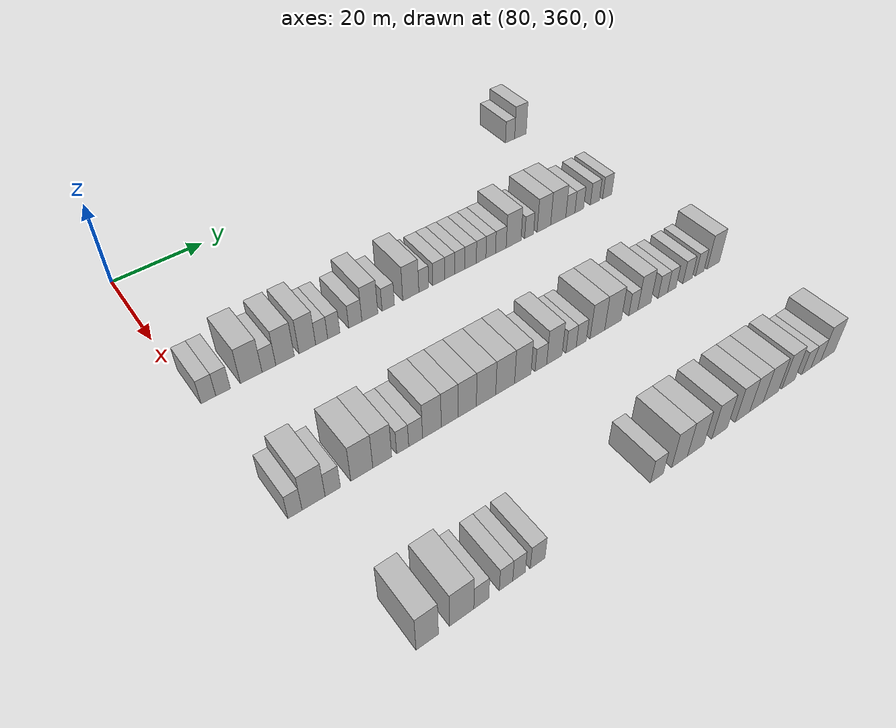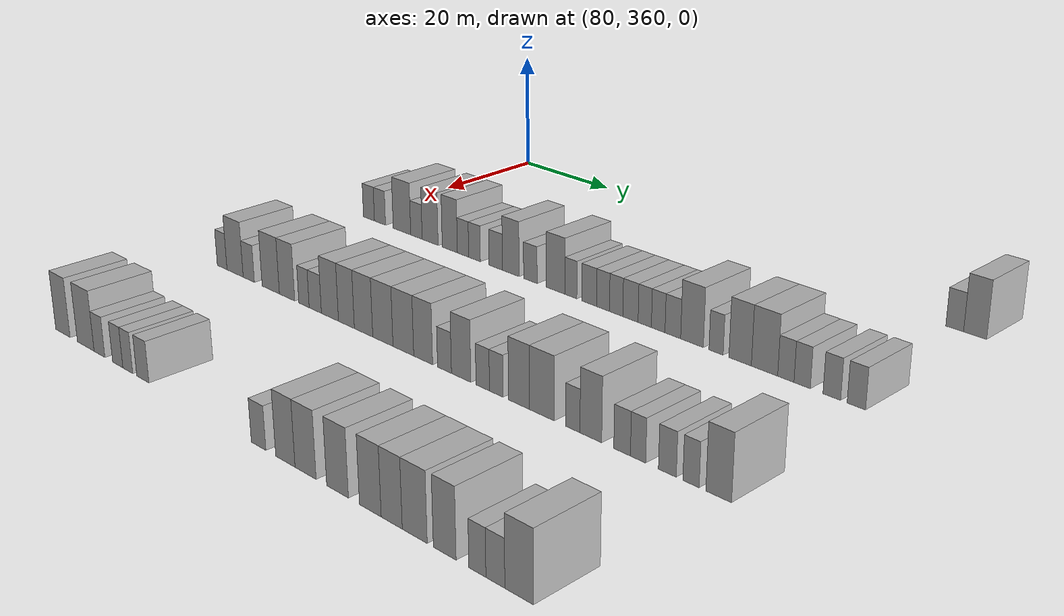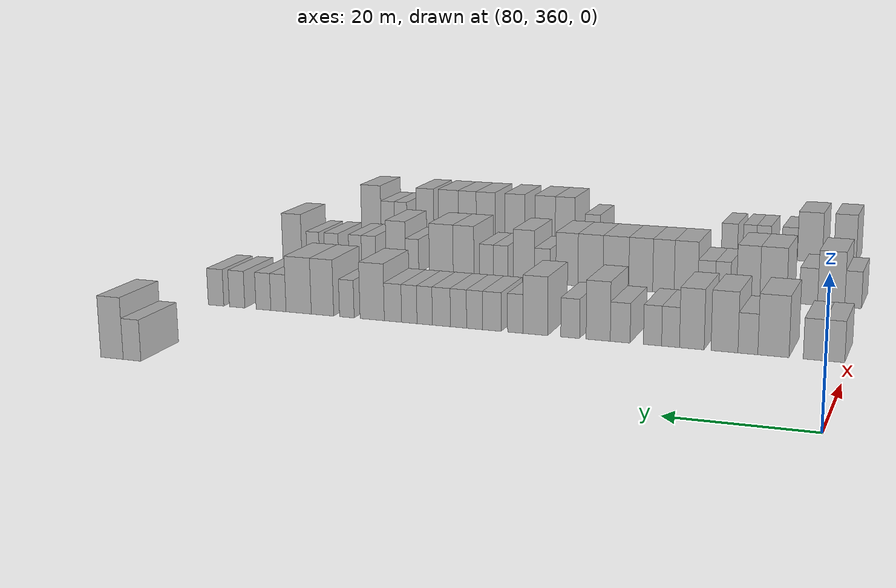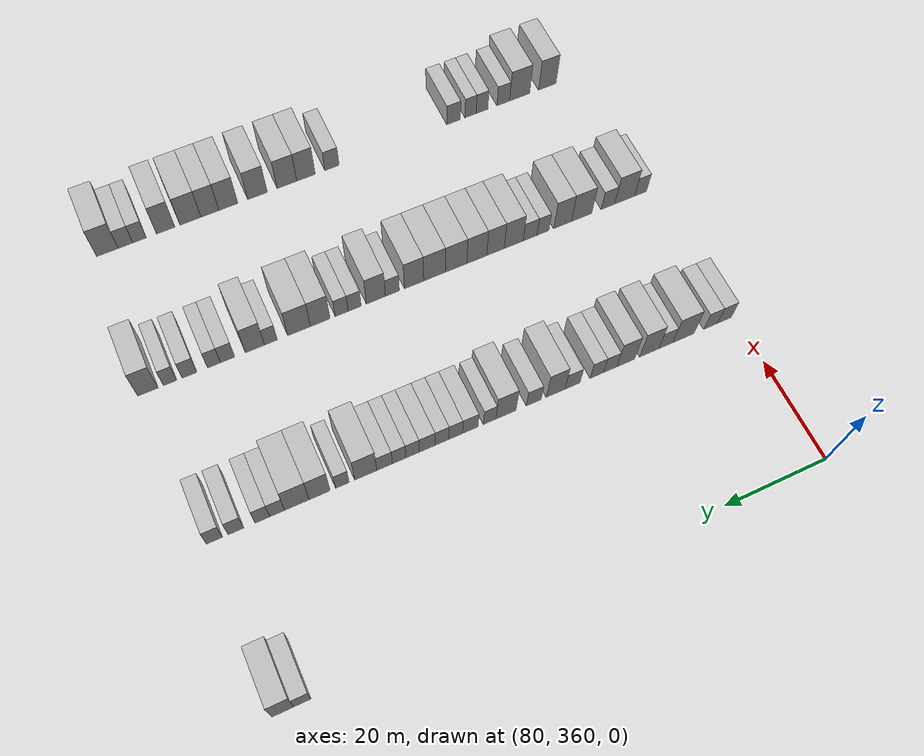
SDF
<sdf version="1.6">
 <world name="default">
  <model name="building_663">
   <static>1</static>
   <pose>85.0000 456.2371 0 0.000000 0.000000 0.000000</pose>
   <link name="link">
    <pose>0 0 3.00 0 0 0</pose>
    <collision name="collision"><geometry><box><size>10.0000 2.8579 6.0000</size></box></geometry></collision>
    <visual name="visual">
     <cast_shadows>0</cast_shadows>
     <geometry><box><size>10.0000 2.8579 6.0000</size></box></geometry>
     <material>
      <script>
       <uri>model://HANNAS_wall/materials/scripts</uri>
       <uri>model://HANNAS_wall/materials/textures</uri>
       <name>vrc/HANNAS_wall</name>
      </script>
     </material>
    </visual>
   </link>
  </model>
  <model name="building_664">
   <static>1</static>
   <pose>85.0000 459.4884 0 0.000000 0.000000 0.000000</pose>
   <link name="link">
    <pose>0 0 4.50 0 0 0</pose>
    <collision name="collision"><geometry><box><size>10.0000 3.6447 9.0000</size></box></geometry></collision>
    <visual name="visual">
     <cast_shadows>0</cast_shadows>
     <geometry><box><size>10.0000 3.6447 9.0000</size></box></geometry>
     <material>
      <script>
       <uri>model://HANNAS_wall/materials/scripts</uri>
       <uri>model://HANNAS_wall/materials/textures</uri>
       <name>vrc/HANNAS_wall</name>
      </script>
     </material>
    </visual>
   </link>
  </model>
  <model name="building_849">
   <static>1</static>
   <pose>115.0000 362.1940 0 0.000000 0.000000 0.000000</pose>
   <link name="link">
    <pose>0 0 3.00 0 0 0</pose>
    <collision name="collision"><geometry><box><size>10.0000 2.8998 6.0000</size></box></geometry></collision>
    <visual name="visual">
     <cast_shadows>0</cast_shadows>
     <geometry><box><size>10.0000 2.8998 6.0000</size></box></geometry>
     <material>
      <script>
       <uri>model://HANNAS_wall/materials/scripts</uri>
       <uri>model://HANNAS_wall/materials/textures</uri>
       <name>vrc/HANNAS_wall</name>
      </script>
     </material>
    </visual>
   </link>
  </model>
  <model name="building_850">
   <static>1</static>
   <pose>115.0000 365.0901 0 0.000000 0.000000 0.000000</pose>
   <link name="link">
    <pose>0 0 3.00 0 0 0</pose>
    <collision name="collision"><geometry><box><size>10.0000 2.8925 6.0000</size></box></geometry></collision>
    <visual name="visual">
     <cast_shadows>0</cast_shadows>
     <geometry><box><size>10.0000 2.8925 6.0000</size></box></geometry>
     <material>
      <script>
       <uri>model://HANNAS_wall/materials/scripts</uri>
       <uri>model://HANNAS_wall/materials/textures</uri>
       <name>vrc/HANNAS_wall</name>
      </script>
     </material>
    </visual>
   </link>
  </model>
  <model name="building_851">
   <static>1</static>
   <pose>115.0000 370.7527 0 0.000000 0.000000 0.000000</pose>
   <link name="link">
    <pose>0 0 4.50 0 0 0</pose>
    <collision name="collision"><geometry><box><size>10.0000 4.4326 9.0000</size></box></geometry></collision>
    <visual name="visual">
     <cast_shadows>0</cast_shadows>
     <geometry><box><size>10.0000 4.4326 9.0000</size></box></geometry>
     <material>
      <script>
       <uri>model://HANNAS_wall/materials/scripts</uri>
       <uri>model://HANNAS_wall/materials/textures</uri>
       <name>vrc/HANNAS_wall</name>
      </script>
     </material>
    </visual>
   </link>
  </model>
  <model name="building_852">
   <static>1</static>
   <pose>115.0000 374.3965 0 0.000000 0.000000 0.000000</pose>
   <link name="link">
    <pose>0 0 3.00 0 0 0</pose>
    <collision name="collision"><geometry><box><size>10.0000 2.8550 6.0000</size></box></geometry></collision>
    <visual name="visual">
     <cast_shadows>0</cast_shadows>
     <geometry><box><size>10.0000 2.8550 6.0000</size></box></geometry>
     <material>
      <script>
       <uri>model://HANNAS_wall/materials/scripts</uri>
       <uri>model://HANNAS_wall/materials/textures</uri>
       <name>vrc/HANNAS_wall</name>
      </script>
     </material>
    </visual>
   </link>
  </model>
  <model name="building_853">
   <static>1</static>
   <pose>115.0000 377.7786 0 0.000000 0.000000 0.000000</pose>
   <link name="link">
    <pose>0 0 4.50 0 0 0</pose>
    <collision name="collision"><geometry><box><size>10.0000 3.9092 9.0000</size></box></geometry></collision>
    <visual name="visual">
     <cast_shadows>0</cast_shadows>
     <geometry><box><size>10.0000 3.9092 9.0000</size></box></geometry>
     <material>
      <script>
       <uri>model://HANNAS_wall/materials/scripts</uri>
       <uri>model://HANNAS_wall/materials/textures</uri>
       <name>vrc/HANNAS_wall</name>
      </script>
     </material>
    </visual>
   </link>
  </model>
  <model name="building_854">
   <static>1</static>
   <pose>115.0000 382.5445 0 0.000000 0.000000 0.000000</pose>
   <link name="link">
    <pose>0 0 4.50 0 0 0</pose>
    <collision name="collision"><geometry><box><size>10.0000 3.6224 9.0000</size></box></geometry></collision>
    <visual name="visual">
     <cast_shadows>0</cast_shadows>
     <geometry><box><size>10.0000 3.6224 9.0000</size></box></geometry>
     <material>
      <script>
       <uri>model://HANNAS_wall/materials/scripts</uri>
       <uri>model://HANNAS_wall/materials/textures</uri>
       <name>vrc/HANNAS_wall</name>
      </script>
     </material>
    </visual>
   </link>
  </model>
  <model name="building_855">
   <static>1</static>
   <pose>115.0000 385.6779 0 0.000000 0.000000 0.000000</pose>
   <link name="link">
    <pose>0 0 3.00 0 0 0</pose>
    <collision name="collision"><geometry><box><size>10.0000 2.6444 6.0000</size></box></geometry></collision>
    <visual name="visual">
     <cast_shadows>0</cast_shadows>
     <geometry><box><size>10.0000 2.6444 6.0000</size></box></geometry>
     <material>
      <script>
       <uri>model://HANNAS_wall/materials/scripts</uri>
       <uri>model://HANNAS_wall/materials/textures</uri>
       <name>vrc/HANNAS_wall</name>
      </script>
     </material>
    </visual>
   </link>
  </model>
  <model name="building_856">
   <static>1</static>
   <pose>115.0000 388.3577 0 0.000000 0.000000 0.000000</pose>
   <link name="link">
    <pose>0 0 3.00 0 0 0</pose>
    <collision name="collision"><geometry><box><size>10.0000 2.7153 6.0000</size></box></geometry></collision>
    <visual name="visual">
     <cast_shadows>0</cast_shadows>
     <geometry><box><size>10.0000 2.7153 6.0000</size></box></geometry>
     <material>
      <script>
       <uri>model://HANNAS_wall/materials/scripts</uri>
       <uri>model://HANNAS_wall/materials/textures</uri>
       <name>vrc/HANNAS_wall</name>
      </script>
     </material>
    </visual>
   </link>
  </model>
  <model name="building_857">
   <static>1</static>
   <pose>115.0000 393.2143 0 0.000000 0.000000 0.000000</pose>
   <link name="link">
    <pose>0 0 3.00 0 0 0</pose>
    <collision name="collision"><geometry><box><size>10.0000 2.9977 6.0000</size></box></geometry></collision>
    <visual name="visual">
     <cast_shadows>0</cast_shadows>
     <geometry><box><size>10.0000 2.9977 6.0000</size></box></geometry>
     <material>
      <script>
       <uri>model://HANNAS_wall/materials/scripts</uri>
       <uri>model://HANNAS_wall/materials/textures</uri>
       <name>vrc/HANNAS_wall</name>
      </script>
     </material>
    </visual>
   </link>
  </model>
  <model name="building_858">
   <static>1</static>
   <pose>115.0000 396.5591 0 0.000000 0.000000 0.000000</pose>
   <link name="link">
    <pose>0 0 4.50 0 0 0</pose>
    <collision name="collision"><geometry><box><size>10.0000 3.6920 9.0000</size></box></geometry></collision>
    <visual name="visual">
     <cast_shadows>0</cast_shadows>
     <geometry><box><size>10.0000 3.6920 9.0000</size></box></geometry>
     <material>
      <script>
       <uri>model://HANNAS_wall/materials/scripts</uri>
       <uri>model://HANNAS_wall/materials/textures</uri>
       <name>vrc/HANNAS_wall</name>
      </script>
     </material>
    </visual>
   </link>
  </model>
  <model name="building_859">
   <static>1</static>
   <pose>115.0000 400.8617 0 0.000000 0.000000 0.000000</pose>
   <link name="link">
    <pose>0 0 3.00 0 0 0</pose>
    <collision name="collision"><geometry><box><size>10.0000 2.9131 6.0000</size></box></geometry></collision>
    <visual name="visual">
     <cast_shadows>0</cast_shadows>
     <geometry><box><size>10.0000 2.9131 6.0000</size></box></geometry>
     <material>
      <script>
       <uri>model://HANNAS_wall/materials/scripts</uri>
       <uri>model://HANNAS_wall/materials/textures</uri>
       <name>vrc/HANNAS_wall</name>
      </script>
     </material>
    </visual>
   </link>
  </model>
  <model name="building_860">
   <static>1</static>
   <pose>115.0000 406.2743 0 0.000000 0.000000 0.000000</pose>
   <link name="link">
    <pose>0 0 4.50 0 0 0</pose>
    <collision name="collision"><geometry><box><size>10.0000 3.9122 9.0000</size></box></geometry></collision>
    <visual name="visual">
     <cast_shadows>0</cast_shadows>
     <geometry><box><size>10.0000 3.9122 9.0000</size></box></geometry>
     <material>
      <script>
       <uri>model://HANNAS_wall/materials/scripts</uri>
       <uri>model://HANNAS_wall/materials/textures</uri>
       <name>vrc/HANNAS_wall</name>
      </script>
     </material>
    </visual>
   </link>
  </model>
  <model name="building_861">
   <static>1</static>
   <pose>115.0000 409.4470 0 0.000000 0.000000 0.000000</pose>
   <link name="link">
    <pose>0 0 3.00 0 0 0</pose>
    <collision name="collision"><geometry><box><size>10.0000 2.4332 6.0000</size></box></geometry></collision>
    <visual name="visual">
     <cast_shadows>0</cast_shadows>
     <geometry><box><size>10.0000 2.4332 6.0000</size></box></geometry>
     <material>
      <script>
       <uri>model://HANNAS_wall/materials/scripts</uri>
       <uri>model://HANNAS_wall/materials/textures</uri>
       <name>vrc/HANNAS_wall</name>
      </script>
     </material>
    </visual>
   </link>
  </model>
  <model name="building_862">
   <static>1</static>
   <pose>115.0000 413.1508 0 0.000000 0.000000 0.000000</pose>
   <link name="link">
    <pose>0 0 3.00 0 0 0</pose>
    <collision name="collision"><geometry><box><size>10.0000 2.9743 6.0000</size></box></geometry></collision>
    <visual name="visual">
     <cast_shadows>0</cast_shadows>
     <geometry><box><size>10.0000 2.9743 6.0000</size></box></geometry>
     <material>
      <script>
       <uri>model://HANNAS_wall/materials/scripts</uri>
       <uri>model://HANNAS_wall/materials/textures</uri>
       <name>vrc/HANNAS_wall</name>
      </script>
     </material>
    </visual>
   </link>
  </model>
  <model name="building_863">
   <static>1</static>
   <pose>115.0000 415.9290 0 0.000000 0.000000 0.000000</pose>
   <link name="link">
    <pose>0 0 3.00 0 0 0</pose>
    <collision name="collision"><geometry><box><size>10.0000 2.5821 6.0000</size></box></geometry></collision>
    <visual name="visual">
     <cast_shadows>0</cast_shadows>
     <geometry><box><size>10.0000 2.5821 6.0000</size></box></geometry>
     <material>
      <script>
       <uri>model://HANNAS_wall/materials/scripts</uri>
       <uri>model://HANNAS_wall/materials/textures</uri>
       <name>vrc/HANNAS_wall</name>
      </script>
     </material>
    </visual>
   </link>
  </model>
  <model name="building_864">
   <static>1</static>
   <pose>115.0000 418.5278 0 0.000000 0.000000 0.000000</pose>
   <link name="link">
    <pose>0 0 3.00 0 0 0</pose>
    <collision name="collision"><geometry><box><size>10.0000 2.6157 6.0000</size></box></geometry></collision>
    <visual name="visual">
     <cast_shadows>0</cast_shadows>
     <geometry><box><size>10.0000 2.6157 6.0000</size></box></geometry>
     <material>
      <script>
       <uri>model://HANNAS_wall/materials/scripts</uri>
       <uri>model://HANNAS_wall/materials/textures</uri>
       <name>vrc/HANNAS_wall</name>
      </script>
     </material>
    </visual>
   </link>
  </model>
  <model name="building_865">
   <static>1</static>
   <pose>115.0000 421.3132 0 0.000000 0.000000 0.000000</pose>
   <link name="link">
    <pose>0 0 3.00 0 0 0</pose>
    <collision name="collision"><geometry><box><size>10.0000 2.9550 6.0000</size></box></geometry></collision>
    <visual name="visual">
     <cast_shadows>0</cast_shadows>
     <geometry><box><size>10.0000 2.9550 6.0000</size></box></geometry>
     <material>
      <script>
       <uri>model://HANNAS_wall/materials/scripts</uri>
       <uri>model://HANNAS_wall/materials/textures</uri>
       <name>vrc/HANNAS_wall</name>
      </script>
     </material>
    </visual>
   </link>
  </model>
  <model name="building_866">
   <static>1</static>
   <pose>115.0000 424.0544 0 0.000000 0.000000 0.000000</pose>
   <link name="link">
    <pose>0 0 3.00 0 0 0</pose>
    <collision name="collision"><geometry><box><size>10.0000 2.5276 6.0000</size></box></geometry></collision>
    <visual name="visual">
     <cast_shadows>0</cast_shadows>
     <geometry><box><size>10.0000 2.5276 6.0000</size></box></geometry>
     <material>
      <script>
       <uri>model://HANNAS_wall/materials/scripts</uri>
       <uri>model://HANNAS_wall/materials/textures</uri>
       <name>vrc/HANNAS_wall</name>
      </script>
     </material>
    </visual>
   </link>
  </model>
  <model name="building_867">
   <static>1</static>
   <pose>115.0000 426.5894 0 0.000000 0.000000 0.000000</pose>
   <link name="link">
    <pose>0 0 3.00 0 0 0</pose>
    <collision name="collision"><geometry><box><size>10.0000 2.5424 6.0000</size></box></geometry></collision>
    <visual name="visual">
     <cast_shadows>0</cast_shadows>
     <geometry><box><size>10.0000 2.5424 6.0000</size></box></geometry>
     <material>
      <script>
       <uri>model://HANNAS_wall/materials/scripts</uri>
       <uri>model://HANNAS_wall/materials/textures</uri>
       <name>vrc/HANNAS_wall</name>
      </script>
     </material>
    </visual>
   </link>
  </model>
  <model name="building_868">
   <static>1</static>
   <pose>115.0000 429.3024 0 0.000000 0.000000 0.000000</pose>
   <link name="link">
    <pose>0 0 3.00 0 0 0</pose>
    <collision name="collision"><geometry><box><size>10.0000 2.8836 6.0000</size></box></geometry></collision>
    <visual name="visual">
     <cast_shadows>0</cast_shadows>
     <geometry><box><size>10.0000 2.8836 6.0000</size></box></geometry>
     <material>
      <script>
       <uri>model://HANNAS_wall/materials/scripts</uri>
       <uri>model://HANNAS_wall/materials/textures</uri>
       <name>vrc/HANNAS_wall</name>
      </script>
     </material>
    </visual>
   </link>
  </model>
  <model name="building_869">
   <static>1</static>
   <pose>115.0000 432.7891 0 0.000000 0.000000 0.000000</pose>
   <link name="link">
    <pose>0 0 4.50 0 0 0</pose>
    <collision name="collision"><geometry><box><size>10.0000 4.0897 9.0000</size></box></geometry></collision>
    <visual name="visual">
     <cast_shadows>0</cast_shadows>
     <geometry><box><size>10.0000 4.0897 9.0000</size></box></geometry>
     <material>
      <script>
       <uri>model://HANNAS_wall/materials/scripts</uri>
       <uri>model://HANNAS_wall/materials/textures</uri>
       <name>vrc/HANNAS_wall</name>
      </script>
     </material>
    </visual>
   </link>
  </model>
  <model name="building_870">
   <static>1</static>
   <pose>115.0000 437.0777 0 0.000000 0.000000 0.000000</pose>
   <link name="link">
    <pose>0 0 3.00 0 0 0</pose>
    <collision name="collision"><geometry><box><size>10.0000 2.4873 6.0000</size></box></geometry></collision>
    <visual name="visual">
     <cast_shadows>0</cast_shadows>
     <geometry><box><size>10.0000 2.4873 6.0000</size></box></geometry>
     <material>
      <script>
       <uri>model://HANNAS_wall/materials/scripts</uri>
       <uri>model://HANNAS_wall/materials/textures</uri>
       <name>vrc/HANNAS_wall</name>
      </script>
     </material>
    </visual>
   </link>
  </model>
  <model name="building_871">
   <static>1</static>
   <pose>115.0000 441.2434 0 0.000000 0.000000 0.000000</pose>
   <link name="link">
    <pose>0 0 4.50 0 0 0</pose>
    <collision name="collision"><geometry><box><size>10.0000 3.8441 9.0000</size></box></geometry></collision>
    <visual name="visual">
     <cast_shadows>0</cast_shadows>
     <geometry><box><size>10.0000 3.8441 9.0000</size></box></geometry>
     <material>
      <script>
       <uri>model://HANNAS_wall/materials/scripts</uri>
       <uri>model://HANNAS_wall/materials/textures</uri>
       <name>vrc/HANNAS_wall</name>
      </script>
     </material>
    </visual>
   </link>
  </model>
  <model name="building_872">
   <static>1</static>
   <pose>115.0000 445.3595 0 0.000000 0.000000 0.000000</pose>
   <link name="link">
    <pose>0 0 4.50 0 0 0</pose>
    <collision name="collision"><geometry><box><size>10.0000 4.3882 9.0000</size></box></geometry></collision>
    <visual name="visual">
     <cast_shadows>0</cast_shadows>
     <geometry><box><size>10.0000 4.3882 9.0000</size></box></geometry>
     <material>
      <script>
       <uri>model://HANNAS_wall/materials/scripts</uri>
       <uri>model://HANNAS_wall/materials/textures</uri>
       <name>vrc/HANNAS_wall</name>
      </script>
     </material>
    </visual>
   </link>
  </model>
  <model name="building_873">
   <static>1</static>
   <pose>115.0000 448.8848 0 0.000000 0.000000 0.000000</pose>
   <link name="link">
    <pose>0 0 3.00 0 0 0</pose>
    <collision name="collision"><geometry><box><size>10.0000 2.6623 6.0000</size></box></geometry></collision>
    <visual name="visual">
     <cast_shadows>0</cast_shadows>
     <geometry><box><size>10.0000 2.6623 6.0000</size></box></geometry>
     <material>
      <script>
       <uri>model://HANNAS_wall/materials/scripts</uri>
       <uri>model://HANNAS_wall/materials/textures</uri>
       <name>vrc/HANNAS_wall</name>
      </script>
     </material>
    </visual>
   </link>
  </model>
  <model name="building_874">
   <static>1</static>
   <pose>115.0000 451.5260 0 0.000000 0.000000 0.000000</pose>
   <link name="link">
    <pose>0 0 3.00 0 0 0</pose>
    <collision name="collision"><geometry><box><size>10.0000 2.6202 6.0000</size></box></geometry></collision>
    <visual name="visual">
     <cast_shadows>0</cast_shadows>
     <geometry><box><size>10.0000 2.6202 6.0000</size></box></geometry>
     <material>
      <script>
       <uri>model://HANNAS_wall/materials/scripts</uri>
       <uri>model://HANNAS_wall/materials/textures</uri>
       <name>vrc/HANNAS_wall</name>
      </script>
     </material>
    </visual>
   </link>
  </model>
  <model name="building_875">
   <static>1</static>
   <pose>115.0000 456.2098 0 0.000000 0.000000 0.000000</pose>
   <link name="link">
    <pose>0 0 3.00 0 0 0</pose>
    <collision name="collision"><geometry><box><size>10.0000 2.7473 6.0000</size></box></geometry></collision>
    <visual name="visual">
     <cast_shadows>0</cast_shadows>
     <geometry><box><size>10.0000 2.7473 6.0000</size></box></geometry>
     <material>
      <script>
       <uri>model://HANNAS_wall/materials/scripts</uri>
       <uri>model://HANNAS_wall/materials/textures</uri>
       <name>vrc/HANNAS_wall</name>
      </script>
     </material>
    </visual>
   </link>
  </model>
  <model name="building_876">
   <static>1</static>
   <pose>115.0000 459.9858 0 0.000000 0.000000 0.000000</pose>
   <link name="link">
    <pose>0 0 3.00 0 0 0</pose>
    <collision name="collision"><geometry><box><size>10.0000 2.8047 6.0000</size></box></geometry></collision>
    <visual name="visual">
     <cast_shadows>0</cast_shadows>
     <geometry><box><size>10.0000 2.8047 6.0000</size></box></geometry>
     <material>
      <script>
       <uri>model://HANNAS_wall/materials/scripts</uri>
       <uri>model://HANNAS_wall/materials/textures</uri>
       <name>vrc/HANNAS_wall</name>
      </script>
     </material>
    </visual>
   </link>
  </model>
  <model name="building_1076">
   <static>1</static>
   <pose>145.0000 362.8865 0 0.000000 0.000000 0.000000</pose>
   <link name="link">
    <pose>0 0 3.00 0 0 0</pose>
    <collision name="collision"><geometry><box><size>10.0000 2.6132 6.0000</size></box></geometry></collision>
    <visual name="visual">
     <cast_shadows>0</cast_shadows>
     <geometry><box><size>10.0000 2.6132 6.0000</size></box></geometry>
     <material>
      <script>
       <uri>model://HANNAS_wall/materials/scripts</uri>
       <uri>model://HANNAS_wall/materials/textures</uri>
       <name>vrc/HANNAS_wall</name>
      </script>
     </material>
    </visual>
   </link>
  </model>
  <model name="building_1077">
   <static>1</static>
   <pose>145.0000 366.3445 0 0.000000 0.000000 0.000000</pose>
   <link name="link">
    <pose>0 0 4.50 0 0 0</pose>
    <collision name="collision"><geometry><box><size>10.0000 4.3029 9.0000</size></box></geometry></collision>
    <visual name="visual">
     <cast_shadows>0</cast_shadows>
     <geometry><box><size>10.0000 4.3029 9.0000</size></box></geometry>
     <material>
      <script>
       <uri>model://HANNAS_wall/materials/scripts</uri>
       <uri>model://HANNAS_wall/materials/textures</uri>
       <name>vrc/HANNAS_wall</name>
      </script>
     </material>
    </visual>
   </link>
  </model>
  <model name="building_1078">
   <static>1</static>
   <pose>145.0000 369.9593 0 0.000000 0.000000 0.000000</pose>
   <link name="link">
    <pose>0 0 3.00 0 0 0</pose>
    <collision name="collision"><geometry><box><size>10.0000 2.9267 6.0000</size></box></geometry></collision>
    <visual name="visual">
     <cast_shadows>0</cast_shadows>
     <geometry><box><size>10.0000 2.9267 6.0000</size></box></geometry>
     <material>
      <script>
       <uri>model://HANNAS_wall/materials/scripts</uri>
       <uri>model://HANNAS_wall/materials/textures</uri>
       <name>vrc/HANNAS_wall</name>
      </script>
     </material>
    </visual>
   </link>
  </model>
  <model name="building_1079">
   <static>1</static>
   <pose>145.0000 375.5994 0 0.000000 0.000000 0.000000</pose>
   <link name="link">
    <pose>0 0 4.50 0 0 0</pose>
    <collision name="collision"><geometry><box><size>10.0000 4.3534 9.0000</size></box></geometry></collision>
    <visual name="visual">
     <cast_shadows>0</cast_shadows>
     <geometry><box><size>10.0000 4.3534 9.0000</size></box></geometry>
     <material>
      <script>
       <uri>model://HANNAS_wall/materials/scripts</uri>
       <uri>model://HANNAS_wall/materials/textures</uri>
       <name>vrc/HANNAS_wall</name>
      </script>
     </material>
    </visual>
   </link>
  </model>
  <model name="building_1080">
   <static>1</static>
   <pose>145.0000 379.6741 0 0.000000 0.000000 0.000000</pose>
   <link name="link">
    <pose>0 0 4.50 0 0 0</pose>
    <collision name="collision"><geometry><box><size>10.0000 3.7960 9.0000</size></box></geometry></collision>
    <visual name="visual">
     <cast_shadows>0</cast_shadows>
     <geometry><box><size>10.0000 3.7960 9.0000</size></box></geometry>
     <material>
      <script>
       <uri>model://HANNAS_wall/materials/scripts</uri>
       <uri>model://HANNAS_wall/materials/textures</uri>
       <name>vrc/HANNAS_wall</name>
      </script>
     </material>
    </visual>
   </link>
  </model>
  <model name="building_1081">
   <static>1</static>
   <pose>145.0000 383.8187 0 0.000000 0.000000 0.000000</pose>
   <link name="link">
    <pose>0 0 3.00 0 0 0</pose>
    <collision name="collision"><geometry><box><size>10.0000 2.4933 6.0000</size></box></geometry></collision>
    <visual name="visual">
     <cast_shadows>0</cast_shadows>
     <geometry><box><size>10.0000 2.4933 6.0000</size></box></geometry>
     <material>
      <script>
       <uri>model://HANNAS_wall/materials/scripts</uri>
       <uri>model://HANNAS_wall/materials/textures</uri>
       <name>vrc/HANNAS_wall</name>
      </script>
     </material>
    </visual>
   </link>
  </model>
  <model name="building_1082">
   <static>1</static>
   <pose>145.0000 386.5149 0 0.000000 0.000000 0.000000</pose>
   <link name="link">
    <pose>0 0 3.00 0 0 0</pose>
    <collision name="collision"><geometry><box><size>10.0000 2.8990 6.0000</size></box></geometry></collision>
    <visual name="visual">
     <cast_shadows>0</cast_shadows>
     <geometry><box><size>10.0000 2.8990 6.0000</size></box></geometry>
     <material>
      <script>
       <uri>model://HANNAS_wall/materials/scripts</uri>
       <uri>model://HANNAS_wall/materials/textures</uri>
       <name>vrc/HANNAS_wall</name>
      </script>
     </material>
    </visual>
   </link>
  </model>
  <model name="building_1083">
   <static>1</static>
   <pose>145.0000 389.9543 0 0.000000 0.000000 0.000000</pose>
   <link name="link">
    <pose>0 0 4.50 0 0 0</pose>
    <collision name="collision"><geometry><box><size>10.0000 3.9797 9.0000</size></box></geometry></collision>
    <visual name="visual">
     <cast_shadows>0</cast_shadows>
     <geometry><box><size>10.0000 3.9797 9.0000</size></box></geometry>
     <material>
      <script>
       <uri>model://HANNAS_wall/materials/scripts</uri>
       <uri>model://HANNAS_wall/materials/textures</uri>
       <name>vrc/HANNAS_wall</name>
      </script>
     </material>
    </visual>
   </link>
  </model>
  <model name="building_1084">
   <static>1</static>
   <pose>145.0000 393.7561 0 0.000000 0.000000 0.000000</pose>
   <link name="link">
    <pose>0 0 4.50 0 0 0</pose>
    <collision name="collision"><geometry><box><size>10.0000 3.6240 9.0000</size></box></geometry></collision>
    <visual name="visual">
     <cast_shadows>0</cast_shadows>
     <geometry><box><size>10.0000 3.6240 9.0000</size></box></geometry>
     <material>
      <script>
       <uri>model://HANNAS_wall/materials/scripts</uri>
       <uri>model://HANNAS_wall/materials/textures</uri>
       <name>vrc/HANNAS_wall</name>
      </script>
     </material>
    </visual>
   </link>
  </model>
  <model name="building_1085">
   <static>1</static>
   <pose>145.0000 397.6137 0 0.000000 0.000000 0.000000</pose>
   <link name="link">
    <pose>0 0 4.50 0 0 0</pose>
    <collision name="collision"><geometry><box><size>10.0000 4.0911 9.0000</size></box></geometry></collision>
    <visual name="visual">
     <cast_shadows>0</cast_shadows>
     <geometry><box><size>10.0000 4.0911 9.0000</size></box></geometry>
     <material>
      <script>
       <uri>model://HANNAS_wall/materials/scripts</uri>
       <uri>model://HANNAS_wall/materials/textures</uri>
       <name>vrc/HANNAS_wall</name>
      </script>
     </material>
    </visual>
   </link>
  </model>
  <model name="building_1086">
   <static>1</static>
   <pose>145.0000 401.8581 0 0.000000 0.000000 0.000000</pose>
   <link name="link">
    <pose>0 0 4.50 0 0 0</pose>
    <collision name="collision"><geometry><box><size>10.0000 4.3978 9.0000</size></box></geometry></collision>
    <visual name="visual">
     <cast_shadows>0</cast_shadows>
     <geometry><box><size>10.0000 4.3978 9.0000</size></box></geometry>
     <material>
      <script>
       <uri>model://HANNAS_wall/materials/scripts</uri>
       <uri>model://HANNAS_wall/materials/textures</uri>
       <name>vrc/HANNAS_wall</name>
      </script>
     </material>
    </visual>
   </link>
  </model>
  <model name="building_1087">
   <static>1</static>
   <pose>145.0000 406.2484 0 0.000000 0.000000 0.000000</pose>
   <link name="link">
    <pose>0 0 4.50 0 0 0</pose>
    <collision name="collision"><geometry><box><size>10.0000 4.3827 9.0000</size></box></geometry></collision>
    <visual name="visual">
     <cast_shadows>0</cast_shadows>
     <geometry><box><size>10.0000 4.3827 9.0000</size></box></geometry>
     <material>
      <script>
       <uri>model://HANNAS_wall/materials/scripts</uri>
       <uri>model://HANNAS_wall/materials/textures</uri>
       <name>vrc/HANNAS_wall</name>
      </script>
     </material>
    </visual>
   </link>
  </model>
  <model name="building_1088">
   <static>1</static>
   <pose>145.0000 410.3868 0 0.000000 0.000000 0.000000</pose>
   <link name="link">
    <pose>0 0 4.50 0 0 0</pose>
    <collision name="collision"><geometry><box><size>10.0000 3.8942 9.0000</size></box></geometry></collision>
    <visual name="visual">
     <cast_shadows>0</cast_shadows>
     <geometry><box><size>10.0000 3.8942 9.0000</size></box></geometry>
     <material>
      <script>
       <uri>model://HANNAS_wall/materials/scripts</uri>
       <uri>model://HANNAS_wall/materials/textures</uri>
       <name>vrc/HANNAS_wall</name>
      </script>
     </material>
    </visual>
   </link>
  </model>
  <model name="building_1089">
   <static>1</static>
   <pose>145.0000 414.7266 0 0.000000 0.000000 0.000000</pose>
   <link name="link">
    <pose>0 0 3.00 0 0 0</pose>
    <collision name="collision"><geometry><box><size>10.0000 2.7854 6.0000</size></box></geometry></collision>
    <visual name="visual">
     <cast_shadows>0</cast_shadows>
     <geometry><box><size>10.0000 2.7854 6.0000</size></box></geometry>
     <material>
      <script>
       <uri>model://HANNAS_wall/materials/scripts</uri>
       <uri>model://HANNAS_wall/materials/textures</uri>
       <name>vrc/HANNAS_wall</name>
      </script>
     </material>
    </visual>
   </link>
  </model>
  <model name="building_1090">
   <static>1</static>
   <pose>145.0000 418.0223 0 0.000000 0.000000 0.000000</pose>
   <link name="link">
    <pose>0 0 4.50 0 0 0</pose>
    <collision name="collision"><geometry><box><size>10.0000 3.8061 9.0000</size></box></geometry></collision>
    <visual name="visual">
     <cast_shadows>0</cast_shadows>
     <geometry><box><size>10.0000 3.8061 9.0000</size></box></geometry>
     <material>
      <script>
       <uri>model://HANNAS_wall/materials/scripts</uri>
       <uri>model://HANNAS_wall/materials/textures</uri>
       <name>vrc/HANNAS_wall</name>
      </script>
     </material>
    </visual>
   </link>
  </model>
  <model name="building_1091">
   <static>1</static>
   <pose>145.0000 422.2118 0 0.000000 0.000000 0.000000</pose>
   <link name="link">
    <pose>0 0 3.00 0 0 0</pose>
    <collision name="collision"><geometry><box><size>10.0000 2.5728 6.0000</size></box></geometry></collision>
    <visual name="visual">
     <cast_shadows>0</cast_shadows>
     <geometry><box><size>10.0000 2.5728 6.0000</size></box></geometry>
     <material>
      <script>
       <uri>model://HANNAS_wall/materials/scripts</uri>
       <uri>model://HANNAS_wall/materials/textures</uri>
       <name>vrc/HANNAS_wall</name>
      </script>
     </material>
    </visual>
   </link>
  </model>
  <model name="building_1092">
   <static>1</static>
   <pose>145.0000 424.7785 0 0.000000 0.000000 0.000000</pose>
   <link name="link">
    <pose>0 0 3.00 0 0 0</pose>
    <collision name="collision"><geometry><box><size>10.0000 2.5607 6.0000</size></box></geometry></collision>
    <visual name="visual">
     <cast_shadows>0</cast_shadows>
     <geometry><box><size>10.0000 2.5607 6.0000</size></box></geometry>
     <material>
      <script>
       <uri>model://HANNAS_wall/materials/scripts</uri>
       <uri>model://HANNAS_wall/materials/textures</uri>
       <name>vrc/HANNAS_wall</name>
      </script>
     </material>
    </visual>
   </link>
  </model>
  <model name="building_1093">
   <static>1</static>
   <pose>145.0000 428.9701 0 0.000000 0.000000 0.000000</pose>
   <link name="link">
    <pose>0 0 4.50 0 0 0</pose>
    <collision name="collision"><geometry><box><size>10.0000 3.8223 9.0000</size></box></geometry></collision>
    <visual name="visual">
     <cast_shadows>0</cast_shadows>
     <geometry><box><size>10.0000 3.8223 9.0000</size></box></geometry>
     <material>
      <script>
       <uri>model://HANNAS_wall/materials/scripts</uri>
       <uri>model://HANNAS_wall/materials/textures</uri>
       <name>vrc/HANNAS_wall</name>
      </script>
     </material>
    </visual>
   </link>
  </model>
  <model name="building_1094">
   <static>1</static>
   <pose>145.0000 433.0875 0 0.000000 0.000000 0.000000</pose>
   <link name="link">
    <pose>0 0 4.50 0 0 0</pose>
    <collision name="collision"><geometry><box><size>10.0000 4.4126 9.0000</size></box></geometry></collision>
    <visual name="visual">
     <cast_shadows>0</cast_shadows>
     <geometry><box><size>10.0000 4.4126 9.0000</size></box></geometry>
     <material>
      <script>
       <uri>model://HANNAS_wall/materials/scripts</uri>
       <uri>model://HANNAS_wall/materials/textures</uri>
       <name>vrc/HANNAS_wall</name>
      </script>
     </material>
    </visual>
   </link>
  </model>
  <model name="building_1095">
   <static>1</static>
   <pose>145.0000 438.5245 0 0.000000 0.000000 0.000000</pose>
   <link name="link">
    <pose>0 0 3.00 0 0 0</pose>
    <collision name="collision"><geometry><box><size>10.0000 2.4612 6.0000</size></box></geometry></collision>
    <visual name="visual">
     <cast_shadows>0</cast_shadows>
     <geometry><box><size>10.0000 2.4612 6.0000</size></box></geometry>
     <material>
      <script>
       <uri>model://HANNAS_wall/materials/scripts</uri>
       <uri>model://HANNAS_wall/materials/textures</uri>
       <name>vrc/HANNAS_wall</name>
      </script>
     </material>
    </visual>
   </link>
  </model>
  <model name="building_1096">
   <static>1</static>
   <pose>145.0000 441.5829 0 0.000000 0.000000 0.000000</pose>
   <link name="link">
    <pose>0 0 4.50 0 0 0</pose>
    <collision name="collision"><geometry><box><size>10.0000 3.6557 9.0000</size></box></geometry></collision>
    <visual name="visual">
     <cast_shadows>0</cast_shadows>
     <geometry><box><size>10.0000 3.6557 9.0000</size></box></geometry>
     <material>
      <script>
       <uri>model://HANNAS_wall/materials/scripts</uri>
       <uri>model://HANNAS_wall/materials/textures</uri>
       <name>vrc/HANNAS_wall</name>
      </script>
     </material>
    </visual>
   </link>
  </model>
  <model name="building_1097">
   <static>1</static>
   <pose>145.0000 446.7610 0 0.000000 0.000000 0.000000</pose>
   <link name="link">
    <pose>0 0 3.00 0 0 0</pose>
    <collision name="collision"><geometry><box><size>10.0000 2.7006 6.0000</size></box></geometry></collision>
    <visual name="visual">
     <cast_shadows>0</cast_shadows>
     <geometry><box><size>10.0000 2.7006 6.0000</size></box></geometry>
     <material>
      <script>
       <uri>model://HANNAS_wall/materials/scripts</uri>
       <uri>model://HANNAS_wall/materials/textures</uri>
       <name>vrc/HANNAS_wall</name>
      </script>
     </material>
    </visual>
   </link>
  </model>
  <model name="building_1098">
   <static>1</static>
   <pose>145.0000 449.3284 0 0.000000 0.000000 0.000000</pose>
   <link name="link">
    <pose>0 0 3.00 0 0 0</pose>
    <collision name="collision"><geometry><box><size>10.0000 2.4341 6.0000</size></box></geometry></collision>
    <visual name="visual">
     <cast_shadows>0</cast_shadows>
     <geometry><box><size>10.0000 2.4341 6.0000</size></box></geometry>
     <material>
      <script>
       <uri>model://HANNAS_wall/materials/scripts</uri>
       <uri>model://HANNAS_wall/materials/textures</uri>
       <name>vrc/HANNAS_wall</name>
      </script>
     </material>
    </visual>
   </link>
  </model>
  <model name="building_1099">
   <static>1</static>
   <pose>145.0000 453.9229 0 0.000000 0.000000 0.000000</pose>
   <link name="link">
    <pose>0 0 3.00 0 0 0</pose>
    <collision name="collision"><geometry><box><size>10.0000 2.7551 6.0000</size></box></geometry></collision>
    <visual name="visual">
     <cast_shadows>0</cast_shadows>
     <geometry><box><size>10.0000 2.7551 6.0000</size></box></geometry>
     <material>
      <script>
       <uri>model://HANNAS_wall/materials/scripts</uri>
       <uri>model://HANNAS_wall/materials/textures</uri>
       <name>vrc/HANNAS_wall</name>
      </script>
     </material>
    </visual>
   </link>
  </model>
  <model name="building_1100">
   <static>1</static>
   <pose>145.0000 457.5243 0 0.000000 0.000000 0.000000</pose>
   <link name="link">
    <pose>0 0 3.00 0 0 0</pose>
    <collision name="collision"><geometry><box><size>10.0000 2.4477 6.0000</size></box></geometry></collision>
    <visual name="visual">
     <cast_shadows>0</cast_shadows>
     <geometry><box><size>10.0000 2.4477 6.0000</size></box></geometry>
     <material>
      <script>
       <uri>model://HANNAS_wall/materials/scripts</uri>
       <uri>model://HANNAS_wall/materials/textures</uri>
       <name>vrc/HANNAS_wall</name>
      </script>
     </material>
    </visual>
   </link>
  </model>
  <model name="building_1101">
   <static>1</static>
   <pose>145.0000 461.6244 0 0.000000 0.000000 0.000000</pose>
   <link name="link">
    <pose>0 0 4.50 0 0 0</pose>
    <collision name="collision"><geometry><box><size>10.0000 3.7525 9.0000</size></box></geometry></collision>
    <visual name="visual">
     <cast_shadows>0</cast_shadows>
     <geometry><box><size>10.0000 3.7525 9.0000</size></box></geometry>
     <material>
      <script>
       <uri>model://HANNAS_wall/materials/scripts</uri>
       <uri>model://HANNAS_wall/materials/textures</uri>
       <name>vrc/HANNAS_wall</name>
      </script>
     </material>
    </visual>
   </link>
  </model>
  <model name="building_1303">
   <static>1</static>
   <pose>175.0000 367.6150 0 0.000000 0.000000 0.000000</pose>
   <link name="link">
    <pose>0 0 4.50 0 0 0</pose>
    <collision name="collision"><geometry><box><size>10.0000 3.9549 9.0000</size></box></geometry></collision>
    <visual name="visual">
     <cast_shadows>0</cast_shadows>
     <geometry><box><size>10.0000 3.9549 9.0000</size></box></geometry>
     <material>
      <script>
       <uri>model://HANNAS_wall/materials/scripts</uri>
       <uri>model://HANNAS_wall/materials/textures</uri>
       <name>vrc/HANNAS_wall</name>
      </script>
     </material>
    </visual>
   </link>
  </model>
  <model name="building_1304">
   <static>1</static>
   <pose>175.0000 373.8257 0 0.000000 0.000000 0.000000</pose>
   <link name="link">
    <pose>0 0 4.50 0 0 0</pose>
    <collision name="collision"><geometry><box><size>10.0000 4.4667 9.0000</size></box></geometry></collision>
    <visual name="visual">
     <cast_shadows>0</cast_shadows>
     <geometry><box><size>10.0000 4.4667 9.0000</size></box></geometry>
     <material>
      <script>
       <uri>model://HANNAS_wall/materials/scripts</uri>
       <uri>model://HANNAS_wall/materials/textures</uri>
       <name>vrc/HANNAS_wall</name>
      </script>
     </material>
    </visual>
   </link>
  </model>
  <model name="building_1305">
   <static>1</static>
   <pose>175.0000 377.4683 0 0.000000 0.000000 0.000000</pose>
   <link name="link">
    <pose>0 0 3.00 0 0 0</pose>
    <collision name="collision"><geometry><box><size>10.0000 2.8184 6.0000</size></box></geometry></collision>
    <visual name="visual">
     <cast_shadows>0</cast_shadows>
     <geometry><box><size>10.0000 2.8184 6.0000</size></box></geometry>
     <material>
      <script>
       <uri>model://HANNAS_wall/materials/scripts</uri>
       <uri>model://HANNAS_wall/materials/textures</uri>
       <name>vrc/HANNAS_wall</name>
      </script>
     </material>
    </visual>
   </link>
  </model>
  <model name="building_1306">
   <static>1</static>
   <pose>175.0000 382.1740 0 0.000000 0.000000 0.000000</pose>
   <link name="link">
    <pose>0 0 3.00 0 0 0</pose>
    <collision name="collision"><geometry><box><size>10.0000 2.5931 6.0000</size></box></geometry></collision>
    <visual name="visual">
     <cast_shadows>0</cast_shadows>
     <geometry><box><size>10.0000 2.5931 6.0000</size></box></geometry>
     <material>
      <script>
       <uri>model://HANNAS_wall/materials/scripts</uri>
       <uri>model://HANNAS_wall/materials/textures</uri>
       <name>vrc/HANNAS_wall</name>
      </script>
     </material>
    </visual>
   </link>
  </model>
  <model name="building_1307">
   <static>1</static>
   <pose>175.0000 384.7054 0 0.000000 0.000000 0.000000</pose>
   <link name="link">
    <pose>0 0 3.00 0 0 0</pose>
    <collision name="collision"><geometry><box><size>10.0000 2.4697 6.0000</size></box></geometry></collision>
    <visual name="visual">
     <cast_shadows>0</cast_shadows>
     <geometry><box><size>10.0000 2.4697 6.0000</size></box></geometry>
     <material>
      <script>
       <uri>model://HANNAS_wall/materials/scripts</uri>
       <uri>model://HANNAS_wall/materials/textures</uri>
       <name>vrc/HANNAS_wall</name>
      </script>
     </material>
    </visual>
   </link>
  </model>
  <model name="building_1308">
   <static>1</static>
   <pose>175.0000 388.4227 0 0.000000 0.000000 0.000000</pose>
   <link name="link">
    <pose>0 0 3.00 0 0 0</pose>
    <collision name="collision"><geometry><box><size>10.0000 2.9649 6.0000</size></box></geometry></collision>
    <visual name="visual">
     <cast_shadows>0</cast_shadows>
     <geometry><box><size>10.0000 2.9649 6.0000</size></box></geometry>
     <material>
      <script>
       <uri>model://HANNAS_wall/materials/scripts</uri>
       <uri>model://HANNAS_wall/materials/textures</uri>
       <name>vrc/HANNAS_wall</name>
      </script>
     </material>
    </visual>
   </link>
  </model>
  <model name="building_1309">
   <static>1</static>
   <pose>175.0000 414.3915 0 0.000000 0.000000 0.000000</pose>
   <link name="link">
    <pose>0 0 3.00 0 0 0</pose>
    <collision name="collision"><geometry><box><size>10.0000 2.9909 6.0000</size></box></geometry></collision>
    <visual name="visual">
     <cast_shadows>0</cast_shadows>
     <geometry><box><size>10.0000 2.9909 6.0000</size></box></geometry>
     <material>
      <script>
       <uri>model://HANNAS_wall/materials/scripts</uri>
       <uri>model://HANNAS_wall/materials/textures</uri>
       <name>vrc/HANNAS_wall</name>
      </script>
     </material>
    </visual>
   </link>
  </model>
  <model name="building_1310">
   <static>1</static>
   <pose>175.0000 419.7987 0 0.000000 0.000000 0.000000</pose>
   <link name="link">
    <pose>0 0 4.50 0 0 0</pose>
    <collision name="collision"><geometry><box><size>10.0000 3.8235 9.0000</size></box></geometry></collision>
    <visual name="visual">
     <cast_shadows>0</cast_shadows>
     <geometry><box><size>10.0000 3.8235 9.0000</size></box></geometry>
     <material>
      <script>
       <uri>model://HANNAS_wall/materials/scripts</uri>
       <uri>model://HANNAS_wall/materials/textures</uri>
       <name>vrc/HANNAS_wall</name>
      </script>
     </material>
    </visual>
   </link>
  </model>
  <model name="building_1311">
   <static>1</static>
   <pose>175.0000 423.7388 0 0.000000 0.000000 0.000000</pose>
   <link name="link">
    <pose>0 0 4.50 0 0 0</pose>
    <collision name="collision"><geometry><box><size>10.0000 4.0567 9.0000</size></box></geometry></collision>
    <visual name="visual">
     <cast_shadows>0</cast_shadows>
     <geometry><box><size>10.0000 4.0567 9.0000</size></box></geometry>
     <material>
      <script>
       <uri>model://HANNAS_wall/materials/scripts</uri>
       <uri>model://HANNAS_wall/materials/textures</uri>
       <name>vrc/HANNAS_wall</name>
      </script>
     </material>
    </visual>
   </link>
  </model>
  <model name="building_1312">
   <static>1</static>
   <pose>175.0000 429.7692 0 0.000000 0.000000 0.000000</pose>
   <link name="link">
    <pose>0 0 4.50 0 0 0</pose>
    <collision name="collision"><geometry><box><size>10.0000 4.0041 9.0000</size></box></geometry></collision>
    <visual name="visual">
     <cast_shadows>0</cast_shadows>
     <geometry><box><size>10.0000 4.0041 9.0000</size></box></geometry>
     <material>
      <script>
       <uri>model://HANNAS_wall/materials/scripts</uri>
       <uri>model://HANNAS_wall/materials/textures</uri>
       <name>vrc/HANNAS_wall</name>
      </script>
     </material>
    </visual>
   </link>
  </model>
  <model name="building_1313">
   <static>1</static>
   <pose>175.0000 435.6869 0 0.000000 0.000000 0.000000</pose>
   <link name="link">
    <pose>0 0 4.50 0 0 0</pose>
    <collision name="collision"><geometry><box><size>10.0000 3.8312 9.0000</size></box></geometry></collision>
    <visual name="visual">
     <cast_shadows>0</cast_shadows>
     <geometry><box><size>10.0000 3.8312 9.0000</size></box></geometry>
     <material>
      <script>
       <uri>model://HANNAS_wall/materials/scripts</uri>
       <uri>model://HANNAS_wall/materials/textures</uri>
       <name>vrc/HANNAS_wall</name>
      </script>
     </material>
    </visual>
   </link>
  </model>
  <model name="building_1314">
   <static>1</static>
   <pose>175.0000 439.4133 0 0.000000 0.000000 0.000000</pose>
   <link name="link">
    <pose>0 0 4.50 0 0 0</pose>
    <collision name="collision"><geometry><box><size>10.0000 3.6216 9.0000</size></box></geometry></collision>
    <visual name="visual">
     <cast_shadows>0</cast_shadows>
     <geometry><box><size>10.0000 3.6216 9.0000</size></box></geometry>
     <material>
      <script>
       <uri>model://HANNAS_wall/materials/scripts</uri>
       <uri>model://HANNAS_wall/materials/textures</uri>
       <name>vrc/HANNAS_wall</name>
      </script>
     </material>
    </visual>
   </link>
  </model>
  <model name="building_1315">
   <static>1</static>
   <pose>175.0000 443.3038 0 0.000000 0.000000 0.000000</pose>
   <link name="link">
    <pose>0 0 4.50 0 0 0</pose>
    <collision name="collision"><geometry><box><size>10.0000 4.1595 9.0000</size></box></geometry></collision>
    <visual name="visual">
     <cast_shadows>0</cast_shadows>
     <geometry><box><size>10.0000 4.1595 9.0000</size></box></geometry>
     <material>
      <script>
       <uri>model://HANNAS_wall/materials/scripts</uri>
       <uri>model://HANNAS_wall/materials/textures</uri>
       <name>vrc/HANNAS_wall</name>
      </script>
     </material>
    </visual>
   </link>
  </model>
  <model name="building_1316">
   <static>1</static>
   <pose>175.0000 448.2112 0 0.000000 0.000000 0.000000</pose>
   <link name="link">
    <pose>0 0 4.50 0 0 0</pose>
    <collision name="collision"><geometry><box><size>10.0000 3.6552 9.0000</size></box></geometry></collision>
    <visual name="visual">
     <cast_shadows>0</cast_shadows>
     <geometry><box><size>10.0000 3.6552 9.0000</size></box></geometry>
     <material>
      <script>
       <uri>model://HANNAS_wall/materials/scripts</uri>
       <uri>model://HANNAS_wall/materials/textures</uri>
       <name>vrc/HANNAS_wall</name>
      </script>
     </material>
    </visual>
   </link>
  </model>
  <model name="building_1317">
   <static>1</static>
   <pose>175.0000 453.3510 0 0.000000 0.000000 0.000000</pose>
   <link name="link">
    <pose>0 0 3.00 0 0 0</pose>
    <collision name="collision"><geometry><box><size>10.0000 2.6243 6.0000</size></box></geometry></collision>
    <visual name="visual">
     <cast_shadows>0</cast_shadows>
     <geometry><box><size>10.0000 2.6243 6.0000</size></box></geometry>
     <material>
      <script>
       <uri>model://HANNAS_wall/materials/scripts</uri>
       <uri>model://HANNAS_wall/materials/textures</uri>
       <name>vrc/HANNAS_wall</name>
      </script>
     </material>
    </visual>
   </link>
  </model>
  <model name="building_1318">
   <static>1</static>
   <pose>175.0000 456.0905 0 0.000000 0.000000 0.000000</pose>
   <link name="link">
    <pose>0 0 3.00 0 0 0</pose>
    <collision name="collision"><geometry><box><size>10.0000 2.8547 6.0000</size></box></geometry></collision>
    <visual name="visual">
     <cast_shadows>0</cast_shadows>
     <geometry><box><size>10.0000 2.8547 6.0000</size></box></geometry>
     <material>
      <script>
       <uri>model://HANNAS_wall/materials/scripts</uri>
       <uri>model://HANNAS_wall/materials/textures</uri>
       <name>vrc/HANNAS_wall</name>
      </script>
     </material>
    </visual>
   </link>
  </model>
  <model name="building_1319">
   <static>1</static>
   <pose>175.0000 459.6140 0 0.000000 0.000000 0.000000</pose>
   <link name="link">
    <pose>0 0 4.50 0 0 0</pose>
    <collision name="collision"><geometry><box><size>10.0000 4.1923 9.0000</size></box></geometry></collision>
    <visual name="visual">
     <cast_shadows>0</cast_shadows>
     <geometry><box><size>10.0000 4.1923 9.0000</size></box></geometry>
     <material>
      <script>
       <uri>model://HANNAS_wall/materials/scripts</uri>
       <uri>model://HANNAS_wall/materials/textures</uri>
       <name>vrc/HANNAS_wall</name>
      </script>
     </material>
    </visual>
   </link>
  </model>
 </world>
</sdf>
